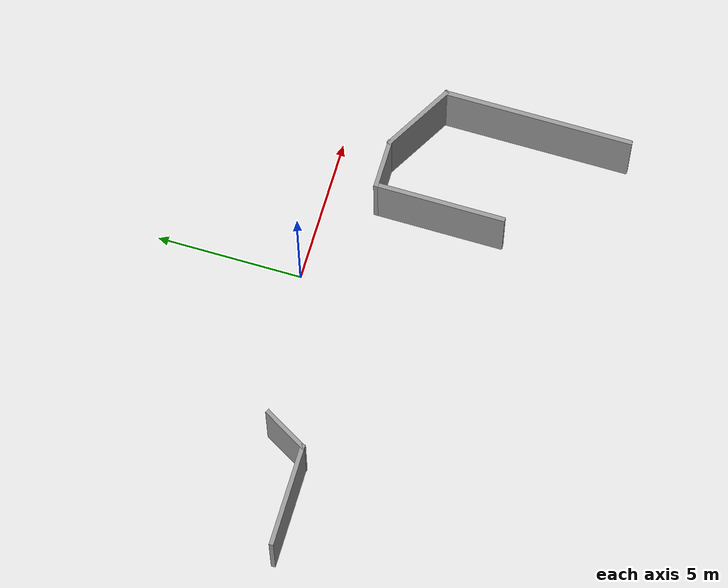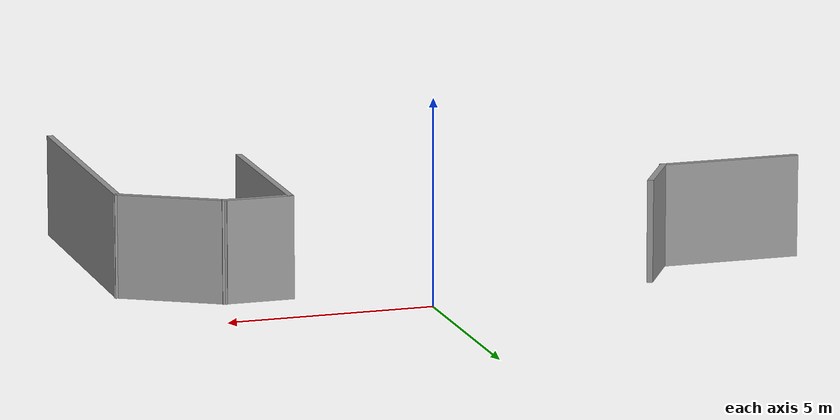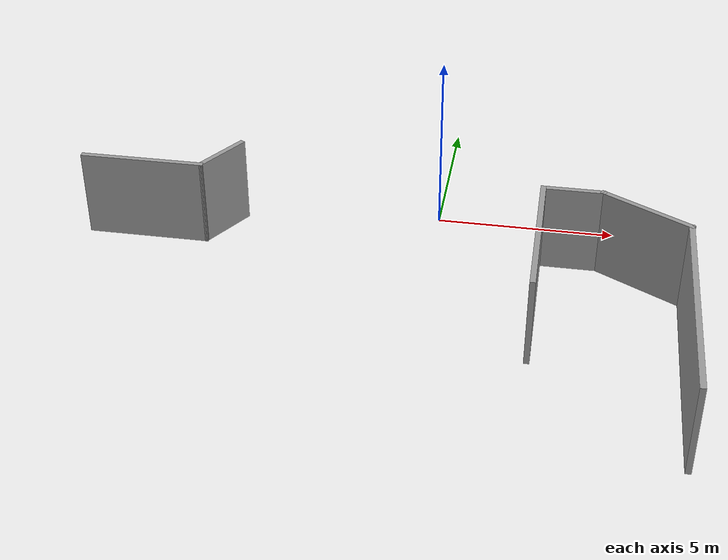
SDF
<?xml version='1.0'?>
<sdf version='1.6'>
  <model name='new_wall'>
    <pose frame=''>-1.47368 -5.04785 0 0 -0 0</pose>
    <link name='Wall_0'>
      <collision name='Wall_0_Collision'>
        <geometry>
          <box>
            <size>6.5 0.15 2.5</size>
          </box>
        </geometry>
        <pose frame=''>0 0 1.25 0 -0 0</pose>
      </collision>
      <visual name='Wall_0_Visual'>
        <pose frame=''>0 0 1.25 0 -0 0</pose>
        <geometry>
          <box>
            <size>6.5 0.15 2.5</size>
          </box>
        </geometry>
        <material>
          <script>
            <uri>file://media/materials/scripts/gazebo.material</uri>
            <name>Gazebo/Grey</name>
          </script>
          <ambient>1 1 1 1</ambient>
        </material>
        <meta>
          <layer>0</layer>
        </meta>
      </visual>
      <pose frame=''>8.28669 -1.19331 0 0 -0 1.5708</pose>
    </link>
    <link name='Wall_2'>
      <collision name='Wall_2_Collision'>
        <geometry>
          <box>
            <size>3.5 0.15 2.5</size>
          </box>
        </geometry>
        <pose frame=''>0 0 1.25 0 -0 0</pose>
      </collision>
      <visual name='Wall_2_Visual'>
        <pose frame=''>0 0 1.25 0 -0 0</pose>
        <geometry>
          <box>
            <size>3.5 0.15 2.5</size>
          </box>
        </geometry>
        <material>
          <script>
            <uri>file://media/materials/scripts/gazebo.material</uri>
            <name>Gazebo/Grey</name>
          </script>
          <ambient>1 1 1 1</ambient>
        </material>
        <meta>
          <layer>0</layer>
        </meta>
      </visual>
      <pose frame=''>-6.63914 2.95521 0 0 -0 3.14159</pose>
    </link>
    <link name='Wall_4'>
      <collision name='Wall_4_Collision'>
        <geometry>
          <box>
            <size>1.75 0.15 2.5</size>
          </box>
        </geometry>
        <pose frame=''>0 0 1.25 0 -0 0</pose>
      </collision>
      <visual name='Wall_4_Visual'>
        <pose frame=''>0 0 1.25 0 -0 0</pose>
        <geometry>
          <box>
            <size>1.75 0.15 2.5</size>
          </box>
        </geometry>
        <material>
          <script>
            <uri>file://media/materials/scripts/gazebo.material</uri>
            <name>Gazebo/Grey</name>
          </script>
          <ambient>1 1 1 1</ambient>
        </material>
        <meta>
          <layer>0</layer>
        </meta>
      </visual>
      <pose frame=''>-4.56414 3.64804 0 0 -0 1.0472</pose>
    </link>
    <link name='Wall_6'>
      <collision name='Wall_6_Collision'>
        <geometry>
          <box>
            <size>2.75 0.15 2.5</size>
          </box>
        </geometry>
        <pose frame=''>0 0 1.25 0 -0 0</pose>
      </collision>
      <visual name='Wall_6_Visual'>
        <pose frame=''>0 0 1.25 0 -0 0</pose>
        <geometry>
          <box>
            <size>2.75 0.15 2.5</size>
          </box>
        </geometry>
        <material>
          <script>
            <uri>file://media/materials/scripts/gazebo.material</uri>
            <name>Gazebo/Grey</name>
          </script>
          <ambient>1 1 1 1</ambient>
        </material>
        <meta>
          <layer>0</layer>
        </meta>
      </visual>
      <pose frame=''>7.16085 2.63169 0 0 -0 2.61799</pose>
    </link>
    <link name='Wall_7'>
      <collision name='Wall_7_Collision'>
        <geometry>
          <box>
            <size>1.75 0.15 2.5</size>
          </box>
        </geometry>
        <pose frame=''>0 0 1.25 0 -0 0</pose>
      </collision>
      <visual name='Wall_7_Visual'>
        <pose frame=''>0 0 1.25 0 -0 0</pose>
        <geometry>
          <box>
            <size>1.75 0.15 2.5</size>
          </box>
        </geometry>
        <material>
          <script>
            <uri>file://media/materials/scripts/gazebo.material</uri>
            <name>Gazebo/Grey</name>
          </script>
          <ambient>1 1 1 1</ambient>
        </material>
        <meta>
          <layer>0</layer>
        </meta>
      </visual>
      <pose frame=''>5.23502 3.28169 0 0 -0 3.14159</pose>
    </link>
    <link name='Wall_8'>
      <collision name='Wall_8_Collision'>
        <geometry>
          <box>
            <size>4.5 0.15 2.5</size>
          </box>
        </geometry>
        <pose frame=''>0 0 1.25 0 -0 0</pose>
      </collision>
      <visual name='Wall_8_Visual'>
        <pose frame=''>0 0 1.25 0 -0 0</pose>
        <geometry>
          <box>
            <size>4.5 0.15 2.5</size>
          </box>
        </geometry>
        <material>
          <script>
            <uri>file://media/materials/scripts/gazebo.material</uri>
            <name>Gazebo/Grey</name>
          </script>
          <ambient>1 1 1 1</ambient>
        </material>
        <meta>
          <layer>0</layer>
        </meta>
      </visual>
      <pose frame=''>4.43502 1.10669 0 0 0 -1.5708</pose>
    </link>
    <static>1</static>
  </model>
</sdf>
